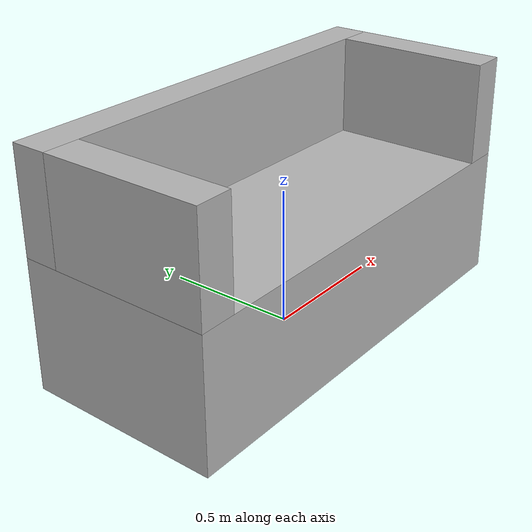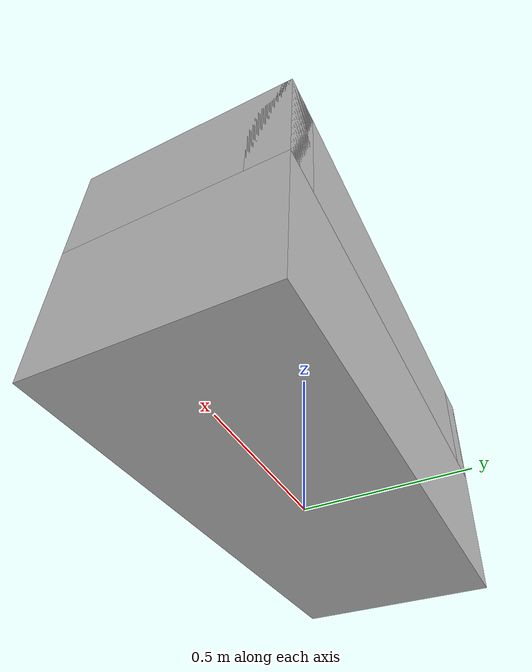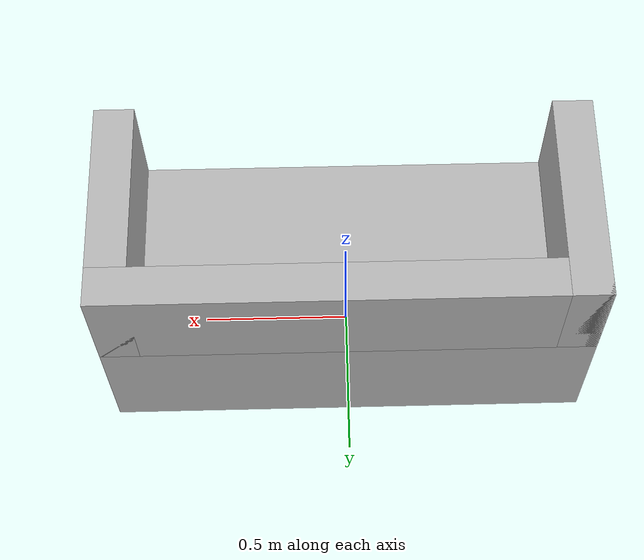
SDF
<?xml version="1.0"?>
<sdf version="1.6">
  <model name="reo2016/couch">
    <link name="1_link">
      <collision name="1_col">
        <geometry>
          <box>
            <size>1.6 0.7 0.47</size>
          </box>
        </geometry>
      </collision>
      <visual name="1_vis">
        <geometry>
          <box>
            <size>1.6 0.7 0.47</size>
          </box>
        </geometry>
      </visual>
      <pose>0.0 0.0 0.235 0 0 0</pose>
    </link>
    <link name="2_link">
      <collision name="2_col">
        <geometry>
          <box>
            <size>1.6 0.13 0.37</size>
          </box>
        </geometry>
      </collision>
      <visual name="2_vis">
        <geometry>
          <box>
            <size>1.6 0.13 0.37</size>
          </box>
        </geometry>
      </visual>
      <pose>0.0 0.285 0.655 0 0 0</pose>
    </link>
    <link name="3_link">
      <collision name="3_col">
        <geometry>
          <box>
            <size>0.13 0.7 0.37</size>
          </box>
        </geometry>
      </collision>
      <visual name="3_vis">
        <geometry>
          <box>
            <size>0.13 0.7 0.37</size>
          </box>
        </geometry>
      </visual>
      <pose>-0.735 0.0 0.655 0 0 0</pose>
    </link>
    <link name="4_link">
      <collision name="4_col">
        <geometry>
          <box>
            <size>0.13 0.7 0.37</size>
          </box>
        </geometry>
      </collision>
      <visual name="4_vis">
        <geometry>
          <box>
            <size>0.13 0.7 0.37</size>
          </box>
        </geometry>
      </visual>
      <pose>0.735 0.0 0.655 0 0 0</pose>
    </link>
    <link name="on_top_of">
      <virtual_volume name="on_top_of_vv">
        <geometry>
          <box>
            <size>1.1 0.35 0.22</size>
          </box>
        </geometry>
        <pose>0.0 -0.175 0.65 0 0 0</pose>
      </virtual_volume>
    </link>
    <link name="in_front_of">
      <virtual_volume name="in_front_of_vv">
        <geometry>
          <box>
            <size>0.6 0.2 0.01</size>
          </box>
        </geometry>
        <pose>0.0 -1.05 0.005 0 0 0</pose>
      </virtual_volume>
    </link>
    <static>true</static>
  </model>
</sdf>
